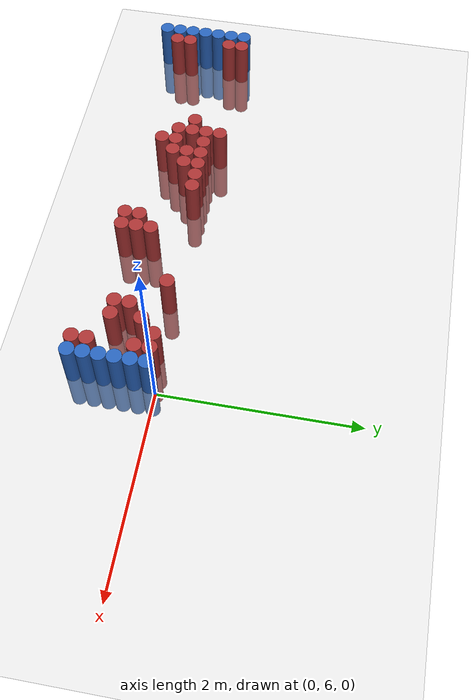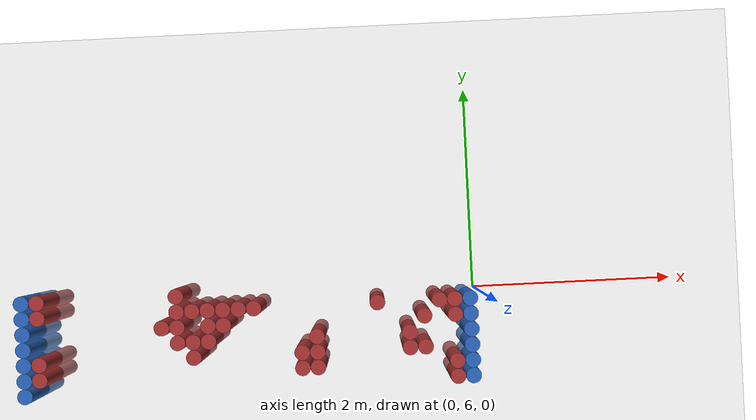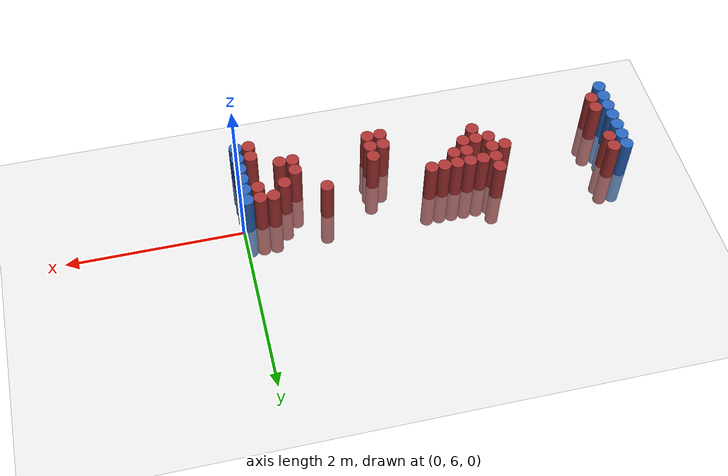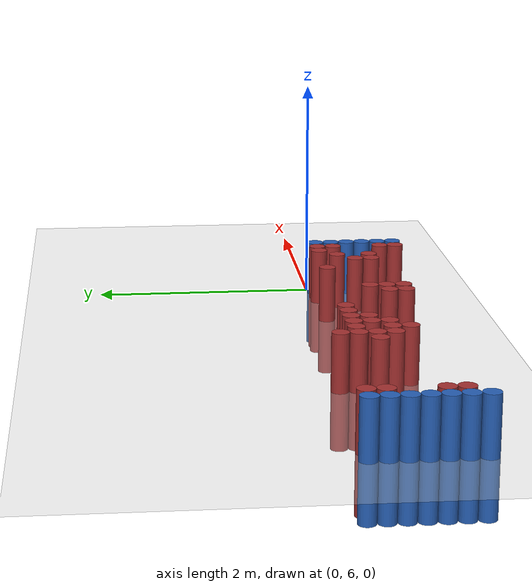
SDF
<sdf version="1.6">
 <world name="default">
  <model name="ground_plane">
   <static>1</static>
   <link name="link">
    <collision name="collision">
     <geometry><plane><normal>0 0 1</normal><size>100 100</size></plane></geometry>
     <surface><friction><ode><mu>100</mu><mu2>50</mu2></ode></friction></surface>
    </collision>
    <visual name="visual">
     <cast_shadows>0</cast_shadows>
     <geometry><plane><normal>0 0 1</normal><size>100 100</size></plane></geometry>
     <material>
      <script><uri>file://media/materials/scripts/gazebo.material</uri><name>Gazebo/Grey</name></script>
     </material>
    </visual>
   </link>
  </model>
  <model name="unit_cylinder_96">
   <static>1</static>
   <pose>-4.425000 5.175000 0.000000 0.000000 0.000000 0.000000</pose>
   <link name="link">
    <inertial>
     <mass>1</mass>
     <inertia><ixx>0.145833</ixx><ixy>0</ixy><ixz>0</ixz><iyy>0.145833</iyy><iyz>0</iyz><izz>0.125</izz></inertia>
    </inertial>
    <collision name="collision">
     <geometry><cylinder><radius>0.075000</radius><length>1</length></cylinder></geometry>
    </collision>
    <visual name="visual">
     <geometry><cylinder><radius>0.075000</radius><length>1</length></cylinder></geometry>
     <material>
      <ambient>0.152000 0.379000 0.720000 1</ambient>
      <diffuse>0.152000 0.379000 0.720000 1</diffuse>
     </material>
     <material>
      <script><name>Gazebo/Grey</name><uri>file://media/materials/scripts/gazebo.material</uri></script>
     </material>
    </visual>
   </link>
  </model>
  <model name="unit_cylinder_97">
   <static>1</static>
   <pose>-4.425000 5.325000 0.000000 0.000000 0.000000 0.000000</pose>
   <link name="link">
    <inertial>
     <mass>1</mass>
     <inertia><ixx>0.145833</ixx><ixy>0</ixy><ixz>0</ixz><iyy>0.145833</iyy><iyz>0</iyz><izz>0.125</izz></inertia>
    </inertial>
    <collision name="collision">
     <geometry><cylinder><radius>0.075000</radius><length>1</length></cylinder></geometry>
    </collision>
    <visual name="visual">
     <geometry><cylinder><radius>0.075000</radius><length>1</length></cylinder></geometry>
     <material>
      <ambient>0.152000 0.379000 0.720000 1</ambient>
      <diffuse>0.152000 0.379000 0.720000 1</diffuse>
     </material>
     <material>
      <script><name>Gazebo/Grey</name><uri>file://media/materials/scripts/gazebo.material</uri></script>
     </material>
    </visual>
   </link>
  </model>
  <model name="unit_cylinder_98">
   <static>1</static>
   <pose>-4.425000 5.475000 0.000000 0.000000 0.000000 0.000000</pose>
   <link name="link">
    <inertial>
     <mass>1</mass>
     <inertia><ixx>0.145833</ixx><ixy>0</ixy><ixz>0</ixz><iyy>0.145833</iyy><iyz>0</iyz><izz>0.125</izz></inertia>
    </inertial>
    <collision name="collision">
     <geometry><cylinder><radius>0.075000</radius><length>1</length></cylinder></geometry>
    </collision>
    <visual name="visual">
     <geometry><cylinder><radius>0.075000</radius><length>1</length></cylinder></geometry>
     <material>
      <ambient>0.152000 0.379000 0.720000 1</ambient>
      <diffuse>0.152000 0.379000 0.720000 1</diffuse>
     </material>
     <material>
      <script><name>Gazebo/Grey</name><uri>file://media/materials/scripts/gazebo.material</uri></script>
     </material>
    </visual>
   </link>
  </model>
  <model name="unit_cylinder_99">
   <static>1</static>
   <pose>-4.425000 5.625000 0.000000 0.000000 0.000000 0.000000</pose>
   <link name="link">
    <inertial>
     <mass>1</mass>
     <inertia><ixx>0.145833</ixx><ixy>0</ixy><ixz>0</ixz><iyy>0.145833</iyy><iyz>0</iyz><izz>0.125</izz></inertia>
    </inertial>
    <collision name="collision">
     <geometry><cylinder><radius>0.075000</radius><length>1</length></cylinder></geometry>
    </collision>
    <visual name="visual">
     <geometry><cylinder><radius>0.075000</radius><length>1</length></cylinder></geometry>
     <material>
      <ambient>0.152000 0.379000 0.720000 1</ambient>
      <diffuse>0.152000 0.379000 0.720000 1</diffuse>
     </material>
     <material>
      <script><name>Gazebo/Grey</name><uri>file://media/materials/scripts/gazebo.material</uri></script>
     </material>
    </visual>
   </link>
  </model>
  <model name="unit_cylinder_100">
   <static>1</static>
   <pose>-4.425000 5.775000 0.000000 0.000000 0.000000 0.000000</pose>
   <link name="link">
    <inertial>
     <mass>1</mass>
     <inertia><ixx>0.145833</ixx><ixy>0</ixy><ixz>0</ixz><iyy>0.145833</iyy><iyz>0</iyz><izz>0.125</izz></inertia>
    </inertial>
    <collision name="collision">
     <geometry><cylinder><radius>0.075000</radius><length>1</length></cylinder></geometry>
    </collision>
    <visual name="visual">
     <geometry><cylinder><radius>0.075000</radius><length>1</length></cylinder></geometry>
     <material>
      <ambient>0.152000 0.379000 0.720000 1</ambient>
      <diffuse>0.152000 0.379000 0.720000 1</diffuse>
     </material>
     <material>
      <script><name>Gazebo/Grey</name><uri>file://media/materials/scripts/gazebo.material</uri></script>
     </material>
    </visual>
   </link>
  </model>
  <model name="unit_cylinder_101">
   <static>1</static>
   <pose>-4.425000 5.925000 0.000000 0.000000 0.000000 0.000000</pose>
   <link name="link">
    <inertial>
     <mass>1</mass>
     <inertia><ixx>0.145833</ixx><ixy>0</ixy><ixz>0</ixz><iyy>0.145833</iyy><iyz>0</iyz><izz>0.125</izz></inertia>
    </inertial>
    <collision name="collision">
     <geometry><cylinder><radius>0.075000</radius><length>1</length></cylinder></geometry>
    </collision>
    <visual name="visual">
     <geometry><cylinder><radius>0.075000</radius><length>1</length></cylinder></geometry>
     <material>
      <ambient>0.152000 0.379000 0.720000 1</ambient>
      <diffuse>0.152000 0.379000 0.720000 1</diffuse>
     </material>
     <material>
      <script><name>Gazebo/Grey</name><uri>file://media/materials/scripts/gazebo.material</uri></script>
     </material>
    </visual>
   </link>
  </model>
  <model name="unit_cylinder_102">
   <static>1</static>
   <pose>-4.425000 6.075000 0.000000 0.000000 0.000000 0.000000</pose>
   <link name="link">
    <inertial>
     <mass>1</mass>
     <inertia><ixx>0.145833</ixx><ixy>0</ixy><ixz>0</ixz><iyy>0.145833</iyy><iyz>0</iyz><izz>0.125</izz></inertia>
    </inertial>
    <collision name="collision">
     <geometry><cylinder><radius>0.075000</radius><length>1</length></cylinder></geometry>
    </collision>
    <visual name="visual">
     <geometry><cylinder><radius>0.075000</radius><length>1</length></cylinder></geometry>
     <material>
      <ambient>0.152000 0.379000 0.720000 1</ambient>
      <diffuse>0.152000 0.379000 0.720000 1</diffuse>
     </material>
     <material>
      <script><name>Gazebo/Grey</name><uri>file://media/materials/scripts/gazebo.material</uri></script>
     </material>
    </visual>
   </link>
  </model>
  <model name="unit_cylinder_126">
   <static>1</static>
   <pose>-4.275000 5.325000 0.000000 0.000000 0.000000 0.000000</pose>
   <link name="link">
    <inertial>
     <mass>1</mass>
     <inertia><ixx>0.145833</ixx><ixy>0</ixy><ixz>0</ixz><iyy>0.145833</iyy><iyz>0</iyz><izz>0.125</izz></inertia>
    </inertial>
    <collision name="collision">
     <geometry><cylinder><radius>0.075000</radius><length>1</length></cylinder></geometry>
    </collision>
    <visual name="visual">
     <geometry><cylinder><radius>0.075000</radius><length>1</length></cylinder></geometry>
     <material>
      <ambient>0.648000 0.192000 0.192000 1</ambient>
      <diffuse>0.648000 0.192000 0.192000 1</diffuse>
     </material>
     <material>
      <script><name>Gazebo/Grey</name><uri>file://media/materials/scripts/gazebo.material</uri></script>
     </material>
    </visual>
   </link>
  </model>
  <model name="unit_cylinder_127">
   <static>1</static>
   <pose>-4.275000 5.475000 0.000000 0.000000 0.000000 0.000000</pose>
   <link name="link">
    <inertial>
     <mass>1</mass>
     <inertia><ixx>0.145833</ixx><ixy>0</ixy><ixz>0</ixz><iyy>0.145833</iyy><iyz>0</iyz><izz>0.125</izz></inertia>
    </inertial>
    <collision name="collision">
     <geometry><cylinder><radius>0.075000</radius><length>1</length></cylinder></geometry>
    </collision>
    <visual name="visual">
     <geometry><cylinder><radius>0.075000</radius><length>1</length></cylinder></geometry>
     <material>
      <ambient>0.648000 0.192000 0.192000 1</ambient>
      <diffuse>0.648000 0.192000 0.192000 1</diffuse>
     </material>
     <material>
      <script><name>Gazebo/Grey</name><uri>file://media/materials/scripts/gazebo.material</uri></script>
     </material>
    </visual>
   </link>
  </model>
  <model name="unit_cylinder_128">
   <static>1</static>
   <pose>-4.275000 5.925000 0.000000 0.000000 0.000000 0.000000</pose>
   <link name="link">
    <inertial>
     <mass>1</mass>
     <inertia><ixx>0.145833</ixx><ixy>0</ixy><ixz>0</ixz><iyy>0.145833</iyy><iyz>0</iyz><izz>0.125</izz></inertia>
    </inertial>
    <collision name="collision">
     <geometry><cylinder><radius>0.075000</radius><length>1</length></cylinder></geometry>
    </collision>
    <visual name="visual">
     <geometry><cylinder><radius>0.075000</radius><length>1</length></cylinder></geometry>
     <material>
      <ambient>0.648000 0.192000 0.192000 1</ambient>
      <diffuse>0.648000 0.192000 0.192000 1</diffuse>
     </material>
     <material>
      <script><name>Gazebo/Grey</name><uri>file://media/materials/scripts/gazebo.material</uri></script>
     </material>
    </visual>
   </link>
  </model>
  <model name="unit_cylinder_129">
   <static>1</static>
   <pose>-4.275000 6.075000 0.000000 0.000000 0.000000 0.000000</pose>
   <link name="link">
    <inertial>
     <mass>1</mass>
     <inertia><ixx>0.145833</ixx><ixy>0</ixy><ixz>0</ixz><iyy>0.145833</iyy><iyz>0</iyz><izz>0.125</izz></inertia>
    </inertial>
    <collision name="collision">
     <geometry><cylinder><radius>0.075000</radius><length>1</length></cylinder></geometry>
    </collision>
    <visual name="visual">
     <geometry><cylinder><radius>0.075000</radius><length>1</length></cylinder></geometry>
     <material>
      <ambient>0.648000 0.192000 0.192000 1</ambient>
      <diffuse>0.648000 0.192000 0.192000 1</diffuse>
     </material>
     <material>
      <script><name>Gazebo/Grey</name><uri>file://media/materials/scripts/gazebo.material</uri></script>
     </material>
    </visual>
   </link>
  </model>
  <model name="unit_cylinder_158">
   <static>1</static>
   <pose>-3.075000 5.775000 0.000000 0.000000 0.000000 0.000000</pose>
   <link name="link">
    <inertial>
     <mass>1</mass>
     <inertia><ixx>0.145833</ixx><ixy>0</ixy><ixz>0</ixz><iyy>0.145833</iyy><iyz>0</iyz><izz>0.125</izz></inertia>
    </inertial>
    <collision name="collision">
     <geometry><cylinder><radius>0.075000</radius><length>1</length></cylinder></geometry>
    </collision>
    <visual name="visual">
     <geometry><cylinder><radius>0.075000</radius><length>1</length></cylinder></geometry>
     <material>
      <ambient>0.648000 0.192000 0.192000 1</ambient>
      <diffuse>0.648000 0.192000 0.192000 1</diffuse>
     </material>
     <material>
      <script><name>Gazebo/Grey</name><uri>file://media/materials/scripts/gazebo.material</uri></script>
     </material>
    </visual>
   </link>
  </model>
  <model name="unit_cylinder_159">
   <static>1</static>
   <pose>-2.925000 5.625000 0.000000 0.000000 0.000000 0.000000</pose>
   <link name="link">
    <inertial>
     <mass>1</mass>
     <inertia><ixx>0.145833</ixx><ixy>0</ixy><ixz>0</ixz><iyy>0.145833</iyy><iyz>0</iyz><izz>0.125</izz></inertia>
    </inertial>
    <collision name="collision">
     <geometry><cylinder><radius>0.075000</radius><length>1</length></cylinder></geometry>
    </collision>
    <visual name="visual">
     <geometry><cylinder><radius>0.075000</radius><length>1</length></cylinder></geometry>
     <material>
      <ambient>0.648000 0.192000 0.192000 1</ambient>
      <diffuse>0.648000 0.192000 0.192000 1</diffuse>
     </material>
     <material>
      <script><name>Gazebo/Grey</name><uri>file://media/materials/scripts/gazebo.material</uri></script>
     </material>
    </visual>
   </link>
  </model>
  <model name="unit_cylinder_160">
   <static>1</static>
   <pose>-2.925000 5.775000 0.000000 0.000000 0.000000 0.000000</pose>
   <link name="link">
    <inertial>
     <mass>1</mass>
     <inertia><ixx>0.145833</ixx><ixy>0</ixy><ixz>0</ixz><iyy>0.145833</iyy><iyz>0</iyz><izz>0.125</izz></inertia>
    </inertial>
    <collision name="collision">
     <geometry><cylinder><radius>0.075000</radius><length>1</length></cylinder></geometry>
    </collision>
    <visual name="visual">
     <geometry><cylinder><radius>0.075000</radius><length>1</length></cylinder></geometry>
     <material>
      <ambient>0.648000 0.192000 0.192000 1</ambient>
      <diffuse>0.648000 0.192000 0.192000 1</diffuse>
     </material>
     <material>
      <script><name>Gazebo/Grey</name><uri>file://media/materials/scripts/gazebo.material</uri></script>
     </material>
    </visual>
   </link>
  </model>
  <model name="unit_cylinder_161">
   <static>1</static>
   <pose>-2.925000 5.925000 0.000000 0.000000 0.000000 0.000000</pose>
   <link name="link">
    <inertial>
     <mass>1</mass>
     <inertia><ixx>0.145833</ixx><ixy>0</ixy><ixz>0</ixz><iyy>0.145833</iyy><iyz>0</iyz><izz>0.125</izz></inertia>
    </inertial>
    <collision name="collision">
     <geometry><cylinder><radius>0.075000</radius><length>1</length></cylinder></geometry>
    </collision>
    <visual name="visual">
     <geometry><cylinder><radius>0.075000</radius><length>1</length></cylinder></geometry>
     <material>
      <ambient>0.648000 0.192000 0.192000 1</ambient>
      <diffuse>0.648000 0.192000 0.192000 1</diffuse>
     </material>
     <material>
      <script><name>Gazebo/Grey</name><uri>file://media/materials/scripts/gazebo.material</uri></script>
     </material>
    </visual>
   </link>
  </model>
  <model name="unit_cylinder_162">
   <static>1</static>
   <pose>-2.925000 6.075000 0.000000 0.000000 0.000000 0.000000</pose>
   <link name="link">
    <inertial>
     <mass>1</mass>
     <inertia><ixx>0.145833</ixx><ixy>0</ixy><ixz>0</ixz><iyy>0.145833</iyy><iyz>0</iyz><izz>0.125</izz></inertia>
    </inertial>
    <collision name="collision">
     <geometry><cylinder><radius>0.075000</radius><length>1</length></cylinder></geometry>
    </collision>
    <visual name="visual">
     <geometry><cylinder><radius>0.075000</radius><length>1</length></cylinder></geometry>
     <material>
      <ambient>0.648000 0.192000 0.192000 1</ambient>
      <diffuse>0.648000 0.192000 0.192000 1</diffuse>
     </material>
     <material>
      <script><name>Gazebo/Grey</name><uri>file://media/materials/scripts/gazebo.material</uri></script>
     </material>
    </visual>
   </link>
  </model>
  <model name="unit_cylinder_163">
   <static>1</static>
   <pose>-2.775000 5.475000 0.000000 0.000000 0.000000 0.000000</pose>
   <link name="link">
    <inertial>
     <mass>1</mass>
     <inertia><ixx>0.145833</ixx><ixy>0</ixy><ixz>0</ixz><iyy>0.145833</iyy><iyz>0</iyz><izz>0.125</izz></inertia>
    </inertial>
    <collision name="collision">
     <geometry><cylinder><radius>0.075000</radius><length>1</length></cylinder></geometry>
    </collision>
    <visual name="visual">
     <geometry><cylinder><radius>0.075000</radius><length>1</length></cylinder></geometry>
     <material>
      <ambient>0.648000 0.192000 0.192000 1</ambient>
      <diffuse>0.648000 0.192000 0.192000 1</diffuse>
     </material>
     <material>
      <script><name>Gazebo/Grey</name><uri>file://media/materials/scripts/gazebo.material</uri></script>
     </material>
    </visual>
   </link>
  </model>
  <model name="unit_cylinder_164">
   <static>1</static>
   <pose>-2.775000 5.625000 0.000000 0.000000 0.000000 0.000000</pose>
   <link name="link">
    <inertial>
     <mass>1</mass>
     <inertia><ixx>0.145833</ixx><ixy>0</ixy><ixz>0</ixz><iyy>0.145833</iyy><iyz>0</iyz><izz>0.125</izz></inertia>
    </inertial>
    <collision name="collision">
     <geometry><cylinder><radius>0.075000</radius><length>1</length></cylinder></geometry>
    </collision>
    <visual name="visual">
     <geometry><cylinder><radius>0.075000</radius><length>1</length></cylinder></geometry>
     <material>
      <ambient>0.648000 0.192000 0.192000 1</ambient>
      <diffuse>0.648000 0.192000 0.192000 1</diffuse>
     </material>
     <material>
      <script><name>Gazebo/Grey</name><uri>file://media/materials/scripts/gazebo.material</uri></script>
     </material>
    </visual>
   </link>
  </model>
  <model name="unit_cylinder_165">
   <static>1</static>
   <pose>-2.775000 5.925000 0.000000 0.000000 0.000000 0.000000</pose>
   <link name="link">
    <inertial>
     <mass>1</mass>
     <inertia><ixx>0.145833</ixx><ixy>0</ixy><ixz>0</ixz><iyy>0.145833</iyy><iyz>0</iyz><izz>0.125</izz></inertia>
    </inertial>
    <collision name="collision">
     <geometry><cylinder><radius>0.075000</radius><length>1</length></cylinder></geometry>
    </collision>
    <visual name="visual">
     <geometry><cylinder><radius>0.075000</radius><length>1</length></cylinder></geometry>
     <material>
      <ambient>0.648000 0.192000 0.192000 1</ambient>
      <diffuse>0.648000 0.192000 0.192000 1</diffuse>
     </material>
     <material>
      <script><name>Gazebo/Grey</name><uri>file://media/materials/scripts/gazebo.material</uri></script>
     </material>
    </visual>
   </link>
  </model>
  <model name="unit_cylinder_168">
   <static>1</static>
   <pose>-2.625000 5.625000 0.000000 0.000000 0.000000 0.000000</pose>
   <link name="link">
    <inertial>
     <mass>1</mass>
     <inertia><ixx>0.145833</ixx><ixy>0</ixy><ixz>0</ixz><iyy>0.145833</iyy><iyz>0</iyz><izz>0.125</izz></inertia>
    </inertial>
    <collision name="collision">
     <geometry><cylinder><radius>0.075000</radius><length>1</length></cylinder></geometry>
    </collision>
    <visual name="visual">
     <geometry><cylinder><radius>0.075000</radius><length>1</length></cylinder></geometry>
     <material>
      <ambient>0.648000 0.192000 0.192000 1</ambient>
      <diffuse>0.648000 0.192000 0.192000 1</diffuse>
     </material>
     <material>
      <script><name>Gazebo/Grey</name><uri>file://media/materials/scripts/gazebo.material</uri></script>
     </material>
    </visual>
   </link>
  </model>
  <model name="unit_cylinder_169">
   <static>1</static>
   <pose>-2.625000 5.775000 0.000000 0.000000 0.000000 0.000000</pose>
   <link name="link">
    <inertial>
     <mass>1</mass>
     <inertia><ixx>0.145833</ixx><ixy>0</ixy><ixz>0</ixz><iyy>0.145833</iyy><iyz>0</iyz><izz>0.125</izz></inertia>
    </inertial>
    <collision name="collision">
     <geometry><cylinder><radius>0.075000</radius><length>1</length></cylinder></geometry>
    </collision>
    <visual name="visual">
     <geometry><cylinder><radius>0.075000</radius><length>1</length></cylinder></geometry>
     <material>
      <ambient>0.648000 0.192000 0.192000 1</ambient>
      <diffuse>0.648000 0.192000 0.192000 1</diffuse>
     </material>
     <material>
      <script><name>Gazebo/Grey</name><uri>file://media/materials/scripts/gazebo.material</uri></script>
     </material>
    </visual>
   </link>
  </model>
  <model name="unit_cylinder_170">
   <static>1</static>
   <pose>-2.625000 5.925000 0.000000 0.000000 0.000000 0.000000</pose>
   <link name="link">
    <inertial>
     <mass>1</mass>
     <inertia><ixx>0.145833</ixx><ixy>0</ixy><ixz>0</ixz><iyy>0.145833</iyy><iyz>0</iyz><izz>0.125</izz></inertia>
    </inertial>
    <collision name="collision">
     <geometry><cylinder><radius>0.075000</radius><length>1</length></cylinder></geometry>
    </collision>
    <visual name="visual">
     <geometry><cylinder><radius>0.075000</radius><length>1</length></cylinder></geometry>
     <material>
      <ambient>0.648000 0.192000 0.192000 1</ambient>
      <diffuse>0.648000 0.192000 0.192000 1</diffuse>
     </material>
     <material>
      <script><name>Gazebo/Grey</name><uri>file://media/materials/scripts/gazebo.material</uri></script>
     </material>
    </visual>
   </link>
  </model>
  <model name="unit_cylinder_174">
   <static>1</static>
   <pose>-2.475000 5.775000 0.000000 0.000000 0.000000 0.000000</pose>
   <link name="link">
    <inertial>
     <mass>1</mass>
     <inertia><ixx>0.145833</ixx><ixy>0</ixy><ixz>0</ixz><iyy>0.145833</iyy><iyz>0</iyz><izz>0.125</izz></inertia>
    </inertial>
    <collision name="collision">
     <geometry><cylinder><radius>0.075000</radius><length>1</length></cylinder></geometry>
    </collision>
    <visual name="visual">
     <geometry><cylinder><radius>0.075000</radius><length>1</length></cylinder></geometry>
     <material>
      <ambient>0.648000 0.192000 0.192000 1</ambient>
      <diffuse>0.648000 0.192000 0.192000 1</diffuse>
     </material>
     <material>
      <script><name>Gazebo/Grey</name><uri>file://media/materials/scripts/gazebo.material</uri></script>
     </material>
    </visual>
   </link>
  </model>
  <model name="unit_cylinder_175">
   <static>1</static>
   <pose>-2.475000 5.925000 0.000000 0.000000 0.000000 0.000000</pose>
   <link name="link">
    <inertial>
     <mass>1</mass>
     <inertia><ixx>0.145833</ixx><ixy>0</ixy><ixz>0</ixz><iyy>0.145833</iyy><iyz>0</iyz><izz>0.125</izz></inertia>
    </inertial>
    <collision name="collision">
     <geometry><cylinder><radius>0.075000</radius><length>1</length></cylinder></geometry>
    </collision>
    <visual name="visual">
     <geometry><cylinder><radius>0.075000</radius><length>1</length></cylinder></geometry>
     <material>
      <ambient>0.648000 0.192000 0.192000 1</ambient>
      <diffuse>0.648000 0.192000 0.192000 1</diffuse>
     </material>
     <material>
      <script><name>Gazebo/Grey</name><uri>file://media/materials/scripts/gazebo.material</uri></script>
     </material>
    </visual>
   </link>
  </model>
  <model name="unit_cylinder_179">
   <static>1</static>
   <pose>-2.325000 5.925000 0.000000 0.000000 0.000000 0.000000</pose>
   <link name="link">
    <inertial>
     <mass>1</mass>
     <inertia><ixx>0.145833</ixx><ixy>0</ixy><ixz>0</ixz><iyy>0.145833</iyy><iyz>0</iyz><izz>0.125</izz></inertia>
    </inertial>
    <collision name="collision">
     <geometry><cylinder><radius>0.075000</radius><length>1</length></cylinder></geometry>
    </collision>
    <visual name="visual">
     <geometry><cylinder><radius>0.075000</radius><length>1</length></cylinder></geometry>
     <material>
      <ambient>0.648000 0.192000 0.192000 1</ambient>
      <diffuse>0.648000 0.192000 0.192000 1</diffuse>
     </material>
     <material>
      <script><name>Gazebo/Grey</name><uri>file://media/materials/scripts/gazebo.material</uri></script>
     </material>
    </visual>
   </link>
  </model>
  <model name="unit_cylinder_183">
   <static>1</static>
   <pose>-2.175000 5.925000 0.000000 0.000000 0.000000 0.000000</pose>
   <link name="link">
    <inertial>
     <mass>1</mass>
     <inertia><ixx>0.145833</ixx><ixy>0</ixy><ixz>0</ixz><iyy>0.145833</iyy><iyz>0</iyz><izz>0.125</izz></inertia>
    </inertial>
    <collision name="collision">
     <geometry><cylinder><radius>0.075000</radius><length>1</length></cylinder></geometry>
    </collision>
    <visual name="visual">
     <geometry><cylinder><radius>0.075000</radius><length>1</length></cylinder></geometry>
     <material>
      <ambient>0.648000 0.192000 0.192000 1</ambient>
      <diffuse>0.648000 0.192000 0.192000 1</diffuse>
     </material>
     <material>
      <script><name>Gazebo/Grey</name><uri>file://media/materials/scripts/gazebo.material</uri></script>
     </material>
    </visual>
   </link>
  </model>
  <model name="unit_cylinder_198">
   <static>1</static>
   <pose>-1.725000 5.325000 0.000000 0.000000 0.000000 0.000000</pose>
   <link name="link">
    <inertial>
     <mass>1</mass>
     <inertia><ixx>0.145833</ixx><ixy>0</ixy><ixz>0</ixz><iyy>0.145833</iyy><iyz>0</iyz><izz>0.125</izz></inertia>
    </inertial>
    <collision name="collision">
     <geometry><cylinder><radius>0.075000</radius><length>1</length></cylinder></geometry>
    </collision>
    <visual name="visual">
     <geometry><cylinder><radius>0.075000</radius><length>1</length></cylinder></geometry>
     <material>
      <ambient>0.648000 0.192000 0.192000 1</ambient>
      <diffuse>0.648000 0.192000 0.192000 1</diffuse>
     </material>
     <material>
      <script><name>Gazebo/Grey</name><uri>file://media/materials/scripts/gazebo.material</uri></script>
     </material>
    </visual>
   </link>
  </model>
  <model name="unit_cylinder_199">
   <static>1</static>
   <pose>-1.725000 5.475000 0.000000 0.000000 0.000000 0.000000</pose>
   <link name="link">
    <inertial>
     <mass>1</mass>
     <inertia><ixx>0.145833</ixx><ixy>0</ixy><ixz>0</ixz><iyy>0.145833</iyy><iyz>0</iyz><izz>0.125</izz></inertia>
    </inertial>
    <collision name="collision">
     <geometry><cylinder><radius>0.075000</radius><length>1</length></cylinder></geometry>
    </collision>
    <visual name="visual">
     <geometry><cylinder><radius>0.075000</radius><length>1</length></cylinder></geometry>
     <material>
      <ambient>0.648000 0.192000 0.192000 1</ambient>
      <diffuse>0.648000 0.192000 0.192000 1</diffuse>
     </material>
     <material>
      <script><name>Gazebo/Grey</name><uri>file://media/materials/scripts/gazebo.material</uri></script>
     </material>
    </visual>
   </link>
  </model>
  <model name="unit_cylinder_202">
   <static>1</static>
   <pose>-1.575000 5.325000 0.000000 0.000000 0.000000 0.000000</pose>
   <link name="link">
    <inertial>
     <mass>1</mass>
     <inertia><ixx>0.145833</ixx><ixy>0</ixy><ixz>0</ixz><iyy>0.145833</iyy><iyz>0</iyz><izz>0.125</izz></inertia>
    </inertial>
    <collision name="collision">
     <geometry><cylinder><radius>0.075000</radius><length>1</length></cylinder></geometry>
    </collision>
    <visual name="visual">
     <geometry><cylinder><radius>0.075000</radius><length>1</length></cylinder></geometry>
     <material>
      <ambient>0.648000 0.192000 0.192000 1</ambient>
      <diffuse>0.648000 0.192000 0.192000 1</diffuse>
     </material>
     <material>
      <script><name>Gazebo/Grey</name><uri>file://media/materials/scripts/gazebo.material</uri></script>
     </material>
    </visual>
   </link>
  </model>
  <model name="unit_cylinder_203">
   <static>1</static>
   <pose>-1.575000 5.475000 0.000000 0.000000 0.000000 0.000000</pose>
   <link name="link">
    <inertial>
     <mass>1</mass>
     <inertia><ixx>0.145833</ixx><ixy>0</ixy><ixz>0</ixz><iyy>0.145833</iyy><iyz>0</iyz><izz>0.125</izz></inertia>
    </inertial>
    <collision name="collision">
     <geometry><cylinder><radius>0.075000</radius><length>1</length></cylinder></geometry>
    </collision>
    <visual name="visual">
     <geometry><cylinder><radius>0.075000</radius><length>1</length></cylinder></geometry>
     <material>
      <ambient>0.648000 0.192000 0.192000 1</ambient>
      <diffuse>0.648000 0.192000 0.192000 1</diffuse>
     </material>
     <material>
      <script><name>Gazebo/Grey</name><uri>file://media/materials/scripts/gazebo.material</uri></script>
     </material>
    </visual>
   </link>
  </model>
  <model name="unit_cylinder_204">
   <static>1</static>
   <pose>-1.575000 5.625000 0.000000 0.000000 0.000000 0.000000</pose>
   <link name="link">
    <inertial>
     <mass>1</mass>
     <inertia><ixx>0.145833</ixx><ixy>0</ixy><ixz>0</ixz><iyy>0.145833</iyy><iyz>0</iyz><izz>0.125</izz></inertia>
    </inertial>
    <collision name="collision">
     <geometry><cylinder><radius>0.075000</radius><length>1</length></cylinder></geometry>
    </collision>
    <visual name="visual">
     <geometry><cylinder><radius>0.075000</radius><length>1</length></cylinder></geometry>
     <material>
      <ambient>0.648000 0.192000 0.192000 1</ambient>
      <diffuse>0.648000 0.192000 0.192000 1</diffuse>
     </material>
     <material>
      <script><name>Gazebo/Grey</name><uri>file://media/materials/scripts/gazebo.material</uri></script>
     </material>
    </visual>
   </link>
  </model>
  <model name="unit_cylinder_210">
   <static>1</static>
   <pose>-0.975000 5.925000 0.000000 0.000000 0.000000 0.000000</pose>
   <link name="link">
    <inertial>
     <mass>1</mass>
     <inertia><ixx>0.145833</ixx><ixy>0</ixy><ixz>0</ixz><iyy>0.145833</iyy><iyz>0</iyz><izz>0.125</izz></inertia>
    </inertial>
    <collision name="collision">
     <geometry><cylinder><radius>0.075000</radius><length>1</length></cylinder></geometry>
    </collision>
    <visual name="visual">
     <geometry><cylinder><radius>0.075000</radius><length>1</length></cylinder></geometry>
     <material>
      <ambient>0.648000 0.192000 0.192000 1</ambient>
      <diffuse>0.648000 0.192000 0.192000 1</diffuse>
     </material>
     <material>
      <script><name>Gazebo/Grey</name><uri>file://media/materials/scripts/gazebo.material</uri></script>
     </material>
    </visual>
   </link>
  </model>
  <model name="unit_cylinder_215">
   <static>1</static>
   <pose>-0.675000 5.475000 0.000000 0.000000 0.000000 0.000000</pose>
   <link name="link">
    <inertial>
     <mass>1</mass>
     <inertia><ixx>0.145833</ixx><ixy>0</ixy><ixz>0</ixz><iyy>0.145833</iyy><iyz>0</iyz><izz>0.125</izz></inertia>
    </inertial>
    <collision name="collision">
     <geometry><cylinder><radius>0.075000</radius><length>1</length></cylinder></geometry>
    </collision>
    <visual name="visual">
     <geometry><cylinder><radius>0.075000</radius><length>1</length></cylinder></geometry>
     <material>
      <ambient>0.648000 0.192000 0.192000 1</ambient>
      <diffuse>0.648000 0.192000 0.192000 1</diffuse>
     </material>
     <material>
      <script><name>Gazebo/Grey</name><uri>file://media/materials/scripts/gazebo.material</uri></script>
     </material>
    </visual>
   </link>
  </model>
  <model name="unit_cylinder_216">
   <static>1</static>
   <pose>-0.675000 5.625000 0.000000 0.000000 0.000000 0.000000</pose>
   <link name="link">
    <inertial>
     <mass>1</mass>
     <inertia><ixx>0.145833</ixx><ixy>0</ixy><ixz>0</ixz><iyy>0.145833</iyy><iyz>0</iyz><izz>0.125</izz></inertia>
    </inertial>
    <collision name="collision">
     <geometry><cylinder><radius>0.075000</radius><length>1</length></cylinder></geometry>
    </collision>
    <visual name="visual">
     <geometry><cylinder><radius>0.075000</radius><length>1</length></cylinder></geometry>
     <material>
      <ambient>0.648000 0.192000 0.192000 1</ambient>
      <diffuse>0.648000 0.192000 0.192000 1</diffuse>
     </material>
     <material>
      <script><name>Gazebo/Grey</name><uri>file://media/materials/scripts/gazebo.material</uri></script>
     </material>
    </visual>
   </link>
  </model>
  <model name="unit_cylinder_220">
   <static>1</static>
   <pose>-0.525000 5.475000 0.000000 0.000000 0.000000 0.000000</pose>
   <link name="link">
    <inertial>
     <mass>1</mass>
     <inertia><ixx>0.145833</ixx><ixy>0</ixy><ixz>0</ixz><iyy>0.145833</iyy><iyz>0</iyz><izz>0.125</izz></inertia>
    </inertial>
    <collision name="collision">
     <geometry><cylinder><radius>0.075000</radius><length>1</length></cylinder></geometry>
    </collision>
    <visual name="visual">
     <geometry><cylinder><radius>0.075000</radius><length>1</length></cylinder></geometry>
     <material>
      <ambient>0.648000 0.192000 0.192000 1</ambient>
      <diffuse>0.648000 0.192000 0.192000 1</diffuse>
     </material>
     <material>
      <script><name>Gazebo/Grey</name><uri>file://media/materials/scripts/gazebo.material</uri></script>
     </material>
    </visual>
   </link>
  </model>
  <model name="unit_cylinder_221">
   <static>1</static>
   <pose>-0.525000 5.775000 0.000000 0.000000 0.000000 0.000000</pose>
   <link name="link">
    <inertial>
     <mass>1</mass>
     <inertia><ixx>0.145833</ixx><ixy>0</ixy><ixz>0</ixz><iyy>0.145833</iyy><iyz>0</iyz><izz>0.125</izz></inertia>
    </inertial>
    <collision name="collision">
     <geometry><cylinder><radius>0.075000</radius><length>1</length></cylinder></geometry>
    </collision>
    <visual name="visual">
     <geometry><cylinder><radius>0.075000</radius><length>1</length></cylinder></geometry>
     <material>
      <ambient>0.648000 0.192000 0.192000 1</ambient>
      <diffuse>0.648000 0.192000 0.192000 1</diffuse>
     </material>
     <material>
      <script><name>Gazebo/Grey</name><uri>file://media/materials/scripts/gazebo.material</uri></script>
     </material>
    </visual>
   </link>
  </model>
  <model name="unit_cylinder_229">
   <static>1</static>
   <pose>-0.375000 5.925000 0.000000 0.000000 0.000000 0.000000</pose>
   <link name="link">
    <inertial>
     <mass>1</mass>
     <inertia><ixx>0.145833</ixx><ixy>0</ixy><ixz>0</ixz><iyy>0.145833</iyy><iyz>0</iyz><izz>0.125</izz></inertia>
    </inertial>
    <collision name="collision">
     <geometry><cylinder><radius>0.075000</radius><length>1</length></cylinder></geometry>
    </collision>
    <visual name="visual">
     <geometry><cylinder><radius>0.075000</radius><length>1</length></cylinder></geometry>
     <material>
      <ambient>0.648000 0.192000 0.192000 1</ambient>
      <diffuse>0.648000 0.192000 0.192000 1</diffuse>
     </material>
     <material>
      <script><name>Gazebo/Grey</name><uri>file://media/materials/scripts/gazebo.material</uri></script>
     </material>
    </visual>
   </link>
  </model>
  <model name="unit_cylinder_242">
   <static>1</static>
   <pose>-0.225000 5.175000 0.000000 0.000000 0.000000 0.000000</pose>
   <link name="link">
    <inertial>
     <mass>1</mass>
     <inertia><ixx>0.145833</ixx><ixy>0</ixy><ixz>0</ixz><iyy>0.145833</iyy><iyz>0</iyz><izz>0.125</izz></inertia>
    </inertial>
    <collision name="collision">
     <geometry><cylinder><radius>0.075000</radius><length>1</length></cylinder></geometry>
    </collision>
    <visual name="visual">
     <geometry><cylinder><radius>0.075000</radius><length>1</length></cylinder></geometry>
     <material>
      <ambient>0.648000 0.192000 0.192000 1</ambient>
      <diffuse>0.648000 0.192000 0.192000 1</diffuse>
     </material>
     <material>
      <script><name>Gazebo/Grey</name><uri>file://media/materials/scripts/gazebo.material</uri></script>
     </material>
    </visual>
   </link>
  </model>
  <model name="unit_cylinder_243">
   <static>1</static>
   <pose>-0.225000 5.325000 0.000000 0.000000 0.000000 0.000000</pose>
   <link name="link">
    <inertial>
     <mass>1</mass>
     <inertia><ixx>0.145833</ixx><ixy>0</ixy><ixz>0</ixz><iyy>0.145833</iyy><iyz>0</iyz><izz>0.125</izz></inertia>
    </inertial>
    <collision name="collision">
     <geometry><cylinder><radius>0.075000</radius><length>1</length></cylinder></geometry>
    </collision>
    <visual name="visual">
     <geometry><cylinder><radius>0.075000</radius><length>1</length></cylinder></geometry>
     <material>
      <ambient>0.648000 0.192000 0.192000 1</ambient>
      <diffuse>0.648000 0.192000 0.192000 1</diffuse>
     </material>
     <material>
      <script><name>Gazebo/Grey</name><uri>file://media/materials/scripts/gazebo.material</uri></script>
     </material>
    </visual>
   </link>
  </model>
  <model name="unit_cylinder_244">
   <static>1</static>
   <pose>-0.225000 5.775000 0.000000 0.000000 0.000000 0.000000</pose>
   <link name="link">
    <inertial>
     <mass>1</mass>
     <inertia><ixx>0.145833</ixx><ixy>0</ixy><ixz>0</ixz><iyy>0.145833</iyy><iyz>0</iyz><izz>0.125</izz></inertia>
    </inertial>
    <collision name="collision">
     <geometry><cylinder><radius>0.075000</radius><length>1</length></cylinder></geometry>
    </collision>
    <visual name="visual">
     <geometry><cylinder><radius>0.075000</radius><length>1</length></cylinder></geometry>
     <material>
      <ambient>0.648000 0.192000 0.192000 1</ambient>
      <diffuse>0.648000 0.192000 0.192000 1</diffuse>
     </material>
     <material>
      <script><name>Gazebo/Grey</name><uri>file://media/materials/scripts/gazebo.material</uri></script>
     </material>
    </visual>
   </link>
  </model>
  <model name="unit_cylinder_245">
   <static>1</static>
   <pose>-0.225000 5.925000 0.000000 0.000000 0.000000 0.000000</pose>
   <link name="link">
    <inertial>
     <mass>1</mass>
     <inertia><ixx>0.145833</ixx><ixy>0</ixy><ixz>0</ixz><iyy>0.145833</iyy><iyz>0</iyz><izz>0.125</izz></inertia>
    </inertial>
    <collision name="collision">
     <geometry><cylinder><radius>0.075000</radius><length>1</length></cylinder></geometry>
    </collision>
    <visual name="visual">
     <geometry><cylinder><radius>0.075000</radius><length>1</length></cylinder></geometry>
     <material>
      <ambient>0.648000 0.192000 0.192000 1</ambient>
      <diffuse>0.648000 0.192000 0.192000 1</diffuse>
     </material>
     <material>
      <script><name>Gazebo/Grey</name><uri>file://media/materials/scripts/gazebo.material</uri></script>
     </material>
    </visual>
   </link>
  </model>
  <model name="unit_cylinder_256">
   <static>1</static>
   <pose>-0.075000 5.175000 0.000000 0.000000 0.000000 0.000000</pose>
   <link name="link">
    <inertial>
     <mass>1</mass>
     <inertia><ixx>0.145833</ixx><ixy>0</ixy><ixz>0</ixz><iyy>0.145833</iyy><iyz>0</iyz><izz>0.125</izz></inertia>
    </inertial>
    <collision name="collision">
     <geometry><cylinder><radius>0.075000</radius><length>1</length></cylinder></geometry>
    </collision>
    <visual name="visual">
     <geometry><cylinder><radius>0.075000</radius><length>1</length></cylinder></geometry>
     <material>
      <ambient>0.152000 0.379000 0.720000 1</ambient>
      <diffuse>0.152000 0.379000 0.720000 1</diffuse>
     </material>
     <material>
      <script><name>Gazebo/Grey</name><uri>file://media/materials/scripts/gazebo.material</uri></script>
     </material>
    </visual>
   </link>
  </model>
  <model name="unit_cylinder_257">
   <static>1</static>
   <pose>-0.075000 5.325000 0.000000 0.000000 0.000000 0.000000</pose>
   <link name="link">
    <inertial>
     <mass>1</mass>
     <inertia><ixx>0.145833</ixx><ixy>0</ixy><ixz>0</ixz><iyy>0.145833</iyy><iyz>0</iyz><izz>0.125</izz></inertia>
    </inertial>
    <collision name="collision">
     <geometry><cylinder><radius>0.075000</radius><length>1</length></cylinder></geometry>
    </collision>
    <visual name="visual">
     <geometry><cylinder><radius>0.075000</radius><length>1</length></cylinder></geometry>
     <material>
      <ambient>0.152000 0.379000 0.720000 1</ambient>
      <diffuse>0.152000 0.379000 0.720000 1</diffuse>
     </material>
     <material>
      <script><name>Gazebo/Grey</name><uri>file://media/materials/scripts/gazebo.material</uri></script>
     </material>
    </visual>
   </link>
  </model>
  <model name="unit_cylinder_258">
   <static>1</static>
   <pose>-0.075000 5.475000 0.000000 0.000000 0.000000 0.000000</pose>
   <link name="link">
    <inertial>
     <mass>1</mass>
     <inertia><ixx>0.145833</ixx><ixy>0</ixy><ixz>0</ixz><iyy>0.145833</iyy><iyz>0</iyz><izz>0.125</izz></inertia>
    </inertial>
    <collision name="collision">
     <geometry><cylinder><radius>0.075000</radius><length>1</length></cylinder></geometry>
    </collision>
    <visual name="visual">
     <geometry><cylinder><radius>0.075000</radius><length>1</length></cylinder></geometry>
     <material>
      <ambient>0.152000 0.379000 0.720000 1</ambient>
      <diffuse>0.152000 0.379000 0.720000 1</diffuse>
     </material>
     <material>
      <script><name>Gazebo/Grey</name><uri>file://media/materials/scripts/gazebo.material</uri></script>
     </material>
    </visual>
   </link>
  </model>
  <model name="unit_cylinder_259">
   <static>1</static>
   <pose>-0.075000 5.625000 0.000000 0.000000 0.000000 0.000000</pose>
   <link name="link">
    <inertial>
     <mass>1</mass>
     <inertia><ixx>0.145833</ixx><ixy>0</ixy><ixz>0</ixz><iyy>0.145833</iyy><iyz>0</iyz><izz>0.125</izz></inertia>
    </inertial>
    <collision name="collision">
     <geometry><cylinder><radius>0.075000</radius><length>1</length></cylinder></geometry>
    </collision>
    <visual name="visual">
     <geometry><cylinder><radius>0.075000</radius><length>1</length></cylinder></geometry>
     <material>
      <ambient>0.152000 0.379000 0.720000 1</ambient>
      <diffuse>0.152000 0.379000 0.720000 1</diffuse>
     </material>
     <material>
      <script><name>Gazebo/Grey</name><uri>file://media/materials/scripts/gazebo.material</uri></script>
     </material>
    </visual>
   </link>
  </model>
  <model name="unit_cylinder_260">
   <static>1</static>
   <pose>-0.075000 5.775000 0.000000 0.000000 0.000000 0.000000</pose>
   <link name="link">
    <inertial>
     <mass>1</mass>
     <inertia><ixx>0.145833</ixx><ixy>0</ixy><ixz>0</ixz><iyy>0.145833</iyy><iyz>0</iyz><izz>0.125</izz></inertia>
    </inertial>
    <collision name="collision">
     <geometry><cylinder><radius>0.075000</radius><length>1</length></cylinder></geometry>
    </collision>
    <visual name="visual">
     <geometry><cylinder><radius>0.075000</radius><length>1</length></cylinder></geometry>
     <material>
      <ambient>0.152000 0.379000 0.720000 1</ambient>
      <diffuse>0.152000 0.379000 0.720000 1</diffuse>
     </material>
     <material>
      <script><name>Gazebo/Grey</name><uri>file://media/materials/scripts/gazebo.material</uri></script>
     </material>
    </visual>
   </link>
  </model>
  <model name="unit_cylinder_261">
   <static>1</static>
   <pose>-0.075000 5.925000 0.000000 0.000000 0.000000 0.000000</pose>
   <link name="link">
    <inertial>
     <mass>1</mass>
     <inertia><ixx>0.145833</ixx><ixy>0</ixy><ixz>0</ixz><iyy>0.145833</iyy><iyz>0</iyz><izz>0.125</izz></inertia>
    </inertial>
    <collision name="collision">
     <geometry><cylinder><radius>0.075000</radius><length>1</length></cylinder></geometry>
    </collision>
    <visual name="visual">
     <geometry><cylinder><radius>0.075000</radius><length>1</length></cylinder></geometry>
     <material>
      <ambient>0.152000 0.379000 0.720000 1</ambient>
      <diffuse>0.152000 0.379000 0.720000 1</diffuse>
     </material>
     <material>
      <script><name>Gazebo/Grey</name><uri>file://media/materials/scripts/gazebo.material</uri></script>
     </material>
    </visual>
   </link>
  </model>
 </world>
</sdf>
